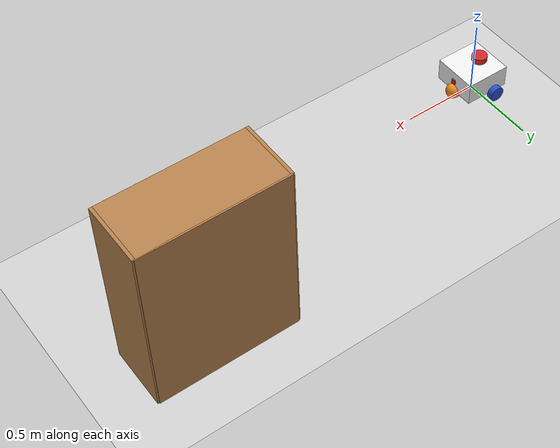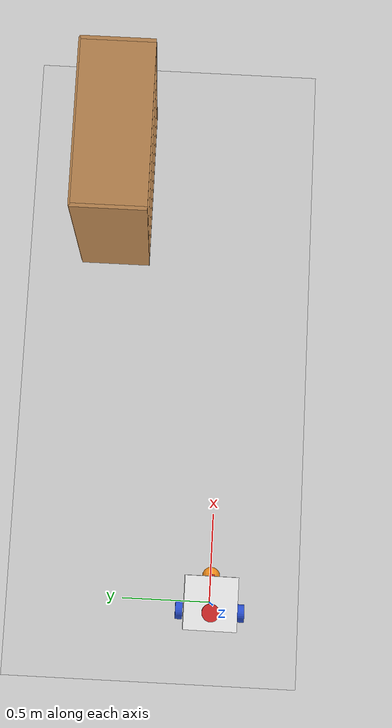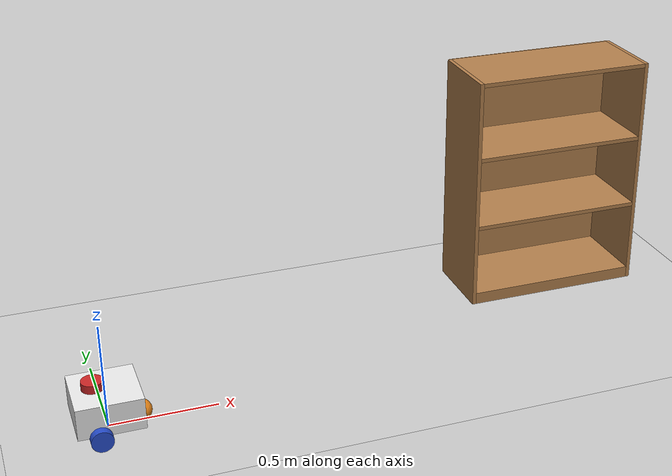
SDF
<sdf version="1.7">
 <world name="default">
  <light name="sun" type="directional">
   <pose>0 0 10 0 -0 0</pose>
   <diffuse>0.8 0.8 0.8 1</diffuse>
   <specular>0.2 0.2 0.2 1</specular>
   <attenuation>
    <range>1000</range>
    <constant>0.9</constant>
    <linear>0.01</linear>
    <quadratic>0.001</quadratic>
   </attenuation>
   <direction>-0.5 0.1 -0.9</direction>
   <spot><inner_angle>0</inner_angle><outer_angle>0</outer_angle><falloff>0</falloff></spot>
  </light>
  <model name="ground_plane">
   <static>1</static>
   <link name="link">
    <collision name="collision">
     <geometry><plane><normal>0 0 1</normal><size>100 100</size></plane></geometry>
     <surface><friction><ode><mu>100</mu><mu2>50</mu2></ode></friction></surface>
    </collision>
    <visual name="visual">
     <cast_shadows>0</cast_shadows>
     <geometry><plane><normal>0 0 1</normal><size>100 100</size></plane></geometry>
     <material>
      <script><uri>file://media/materials/scripts/gazebo.material</uri><name>Gazebo/Grey</name></script>
     </material>
    </visual>
   </link>
  </model>
  <gravity>0 0 -9.8</gravity>
  <magnetic_field>6e-06 2.3e-05 -4.2e-05</magnetic_field>
  <atmosphere type="adiabatic"/>
  <physics type="ode">
   <max_step_size>0.001</max_step_size>
   <real_time_factor>1</real_time_factor>
   <real_time_update_rate>1000</real_time_update_rate>
  </physics>
  <scene><ambient>0.4 0.4 0.4 1</ambient><background>0.7 0.7 0.7 1</background><shadows>1</shadows></scene>
  <audio><device>default</device></audio>
  <spherical_coordinates>
   <surface_model>EARTH_WGS84</surface_model>
   <latitude_deg>0</latitude_deg>
   <longitude_deg>0</longitude_deg>
   <elevation>0</elevation>
   <heading_deg>0</heading_deg>
  </spherical_coordinates>
  <model name="my_bot">
   <link name="base_link">
    <inertial>
     <pose>0.119048 0 0.365476 0 -0 0</pose>
     <mass>2.1</mass>
     <inertia>
      <ixx>0.29461</ixx>
      <ixy>0</ixy>
      <ixz>0.053869</ixz>
      <iyy>0.307348</iyy>
      <iyz>0</iyz>
      <izz>0.0279631</izz>
     </inertia>
    </inertial>
    <collision name="base_link_fixed_joint_lump__caster_collision">
     <pose>0.2 0 0 -1.5708 0 0</pose>
     <geometry><sphere><radius>0.05</radius></sphere></geometry>
     <surface><friction><ode><mu>0.001</mu><mu2>0.001</mu2></ode></friction></surface>
    </collision>
    <collision name="base_link_fixed_joint_lump__chassis_collision_1">
     <pose>0.05 0 0.075 0 -0 0</pose>
     <geometry><box><size>0.3 0.3 0.15</size></box></geometry>
    </collision>
    <collision name="base_link_fixed_joint_lump__laser_frame_collision_2">
     <pose>0 0 0.175 0 -0 0</pose>
     <geometry><cylinder><length>0.04</length><radius>0.05</radius></cylinder></geometry>
    </collision>
    <visual name="base_link_visual">
     <geometry><box><size>0.1 0.1 0.1</size></box></geometry>
     <material>
      <script><name>Gazebo/Red</name><uri>file://media/materials/scripts/gazebo.material</uri></script>
     </material>
    </visual>
    <visual name="base_link_fixed_joint_lump__caster_visual_1">
     <pose>0.2 0 0 -1.5708 0 0</pose>
     <geometry><sphere><radius>0.05</radius></sphere></geometry>
     <material>
      <script><name>Gazebo/Orange</name><uri>file://media/materials/scripts/gazebo.material</uri></script>
     </material>
    </visual>
    <visual name="base_link_fixed_joint_lump__chassis_visual_2">
     <pose>0.05 0 0.075 0 -0 0</pose>
     <geometry><box><size>0.3 0.3 0.15</size></box></geometry>
     <material>
      <script><name>Gazebo/White</name><uri>file://media/materials/scripts/gazebo.material</uri></script>
     </material>
    </visual>
    <visual name="base_link_fixed_joint_lump__camera_link_visual_3">
     <pose>0.205 0 0.08 0 -0 0</pose>
     <geometry><box><size>0.01 0.03 0.03</size></box></geometry>
     <material>
      <script><name>Gazebo/Red</name><uri>file://media/materials/scripts/gazebo.material</uri></script>
     </material>
    </visual>
    <visual name="base_link_fixed_joint_lump__laser_frame_visual_4">
     <pose>0 0 0.175 0 -0 0</pose>
     <geometry><cylinder><length>0.04</length><radius>0.05</radius></cylinder></geometry>
     <material>
      <script><name>Gazebo/Red</name><uri>file://media/materials/scripts/gazebo.material</uri></script>
     </material>
    </visual>
    <sensor name="camera" type="camera">
     <visualize>1</visualize>
     <update_rate>10</update_rate>
     <camera>
      <horizontal_fov>1.089</horizontal_fov>
      <image><format>R8G8B8</format><width>640</width><height>480</height></image>
      <clip><near>0.05</near><far>8</far></clip>
     </camera>
     <plugin name="camera_controller" filename="libgazebo_ros_camera.so">
      <frame_name>camera_link_optical</frame_name>
     </plugin>
     <pose>0.205 0 0.08 0 -0 0</pose>
    </sensor>
    <sensor name="laser" type="ray">
     <visualize>1</visualize>
     <update_rate>10</update_rate>
     <ray>
      <scan>
       <horizontal>
        <samples>360</samples>
        <min_angle>-3.14</min_angle>
        <max_angle>3.14</max_angle>
        <resolution>1</resolution>
       </horizontal>
       <vertical><samples>1</samples><min_angle>0</min_angle><max_angle>0</max_angle></vertical>
      </scan>
      <range><min>0.3</min><max>12</max></range>
     </ray>
     <plugin name="laser_controller" filename="libgazebo_ros_ray_sensor.so">
      <ros><argument>~/out:=scan</argument></ros>
      <output_type>sensor_msgs/LaserScan</output_type>
      <frame_name>laser_frame</frame_name>
     </plugin>
     <pose>0 0 0.175 0 -0 0</pose>
    </sensor>
   </link>
   <joint name="left_wheel_joint" type="revolute">
    <pose relative_to="base_link">0 0.175 0 -1.5708 0 0</pose>
    <parent>base_link</parent>
    <child>left_wheel</child>
    <axis>
     <xyz>0 0 1</xyz>
     <limit><lower>-1e+16</lower><upper>1e+16</upper></limit>
     <dynamics><spring_reference>0</spring_reference><spring_stiffness>0</spring_stiffness></dynamics>
    </axis>
   </joint>
   <link name="left_wheel">
    <pose relative_to="left_wheel_joint">0 0 0 0 -0 0</pose>
    <inertial>
     <mass>0.1</mass>
     <inertia>
      <ixx>7.58333e-05</ixx>
      <ixy>0</ixy>
      <ixz>0</ixz>
      <iyy>7.58333e-05</iyy>
      <iyz>0</iyz>
      <izz>0.000125</izz>
     </inertia>
    </inertial>
    <collision name="left_wheel_collision">
     <geometry><cylinder><length>0.04</length><radius>0.05</radius></cylinder></geometry>
    </collision>
    <visual name="left_wheel_visual">
     <geometry><cylinder><length>0.04</length><radius>0.05</radius></cylinder></geometry>
     <material>
      <script><name>Gazebo/Blue</name><uri>file://media/materials/scripts/gazebo.material</uri></script>
     </material>
    </visual>
   </link>
   <joint name="right_wheel_joint" type="revolute">
    <pose relative_to="base_link">0 -0.175 0 1.5708 -0 0</pose>
    <parent>base_link</parent>
    <child>right_wheel</child>
    <axis>
     <xyz>0 0 -1</xyz>
     <limit><lower>-1e+16</lower><upper>1e+16</upper></limit>
     <dynamics><spring_reference>0</spring_reference><spring_stiffness>0</spring_stiffness></dynamics>
    </axis>
   </joint>
   <link name="right_wheel">
    <pose relative_to="right_wheel_joint">0 0 0 0 -0 0</pose>
    <inertial>
     <mass>0.1</mass>
     <inertia>
      <ixx>7.58333e-05</ixx>
      <ixy>0</ixy>
      <ixz>0</ixz>
      <iyy>7.58333e-05</iyy>
      <iyz>0</iyz>
      <izz>0.000125</izz>
     </inertia>
    </inertial>
    <collision name="right_wheel_collision">
     <geometry><cylinder><length>0.04</length><radius>0.05</radius></cylinder></geometry>
    </collision>
    <visual name="right_wheel_visual">
     <geometry><cylinder><length>0.04</length><radius>0.05</radius></cylinder></geometry>
     <material>
      <script><name>Gazebo/Blue</name><uri>file://media/materials/scripts/gazebo.material</uri></script>
     </material>
    </visual>
   </link>
   <static>0</static>
   <plugin name="my_diff_drive" filename="libgazebo_ros_diff_drive.so">
    <left_joint>left_wheel_joint</left_joint>
    <right_joint>right_wheel_joint</right_joint>
    <wheel_separation>0.297</wheel_separation>
    <wheel_diameter>0.066</wheel_diameter>
    <max_wheel_torque>200</max_wheel_torque>
    <max_wheel_acceleration>10.0</max_wheel_acceleration>
    <odometry_frame>odom</odometry_frame>
    <robot_base_frame>base_link</robot_base_frame>
    <publish_odom>1</publish_odom>
    <publish_odom_tf>1</publish_odom_tf>
    <publish_wheel_tf>1</publish_wheel_tf>
   </plugin>
   <pose>-0.050364 0.000148 0.049998 0 -1.1e-05 -0.003587</pose>
  </model>
  <model name="bookshelf">
   <static>1</static>
   <link name="link">
    <inertial><mass>1</mass></inertial>
    <collision name="back">
     <pose>0 0.005 0.6 0 -0 0</pose>
     <geometry><box><size>0.9 0.01 1.2</size></box></geometry>
    </collision>
    <visual name="visual1">
     <pose>0 0.005 0.6 0 -0 0</pose>
     <geometry><box><size>0.9 0.01 1.2</size></box></geometry>
     <material>
      <script><uri>file://media/materials/scripts/gazebo.material</uri><name>Gazebo/Wood</name></script>
     </material>
    </visual>
    <collision name="left_side">
     <pose>0.45 -0.195 0.6 0 -0 0</pose>
     <geometry><box><size>0.02 0.4 1.2</size></box></geometry>
    </collision>
    <visual name="visual2">
     <pose>0.45 -0.195 0.6 0 -0 0</pose>
     <geometry><box><size>0.02 0.4 1.2</size></box></geometry>
     <material>
      <script><uri>file://media/materials/scripts/gazebo.material</uri><name>Gazebo/Wood</name></script>
     </material>
    </visual>
    <collision name="right_side">
     <pose>-0.45 -0.195 0.6 0 -0 0</pose>
     <geometry><box><size>0.02 0.4 1.2</size></box></geometry>
    </collision>
    <visual name="visual3">
     <pose>-0.45 -0.195 0.6 0 -0 0</pose>
     <geometry><box><size>0.02 0.4 1.2</size></box></geometry>
     <material>
      <script><uri>file://media/materials/scripts/gazebo.material</uri><name>Gazebo/Wood</name></script>
     </material>
    </visual>
    <collision name="bottom">
     <pose>0 -0.195 0.03 0 -0 0</pose>
     <geometry><box><size>0.88 0.4 0.06</size></box></geometry>
    </collision>
    <visual name="visual4">
     <pose>0 -0.195 0.03 0 -0 0</pose>
     <geometry><box><size>0.88 0.4 0.06</size></box></geometry>
     <material>
      <script><uri>file://media/materials/scripts/gazebo.material</uri><name>Gazebo/Wood</name></script>
     </material>
    </visual>
    <collision name="top">
     <pose>0 -0.195 1.19 0 -0 0</pose>
     <geometry><box><size>0.88 0.4 0.02</size></box></geometry>
    </collision>
    <visual name="visual5">
     <pose>0 -0.195 1.19 0 -0 0</pose>
     <geometry><box><size>0.88 0.4 0.02</size></box></geometry>
     <material>
      <script><uri>file://media/materials/scripts/gazebo.material</uri><name>Gazebo/Wood</name></script>
     </material>
    </visual>
    <collision name="low_shelf">
     <pose>0 -0.195 0.43 0 -0 0</pose>
     <geometry><box><size>0.88 0.4 0.02</size></box></geometry>
    </collision>
    <visual name="visual6">
     <pose>0 -0.195 0.43 0 -0 0</pose>
     <geometry><box><size>0.88 0.4 0.02</size></box></geometry>
     <material>
      <script><uri>file://media/materials/scripts/gazebo.material</uri><name>Gazebo/Wood</name></script>
     </material>
    </visual>
    <collision name="high_shelf">
     <pose>0 -0.195 0.8 0 -0 0</pose>
     <geometry><box><size>0.88 0.4 0.02</size></box></geometry>
    </collision>
    <visual name="visual7">
     <pose>0 -0.195 0.8 0 -0 0</pose>
     <geometry><box><size>0.88 0.4 0.02</size></box></geometry>
     <material>
      <script><uri>file://media/materials/scripts/gazebo.material</uri><name>Gazebo/Wood</name></script>
     </material>
    </visual>
   </link>
   <pose>2.41898 0.844997 0 0 -0 0</pose>
  </model>
 </world>
</sdf>
